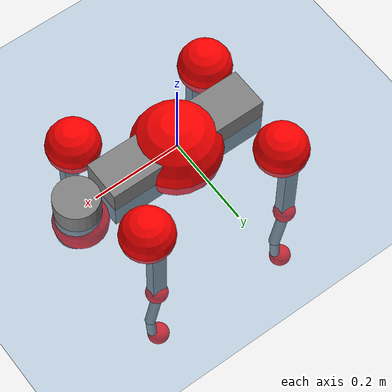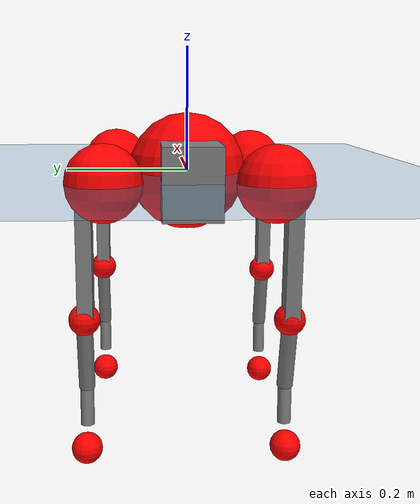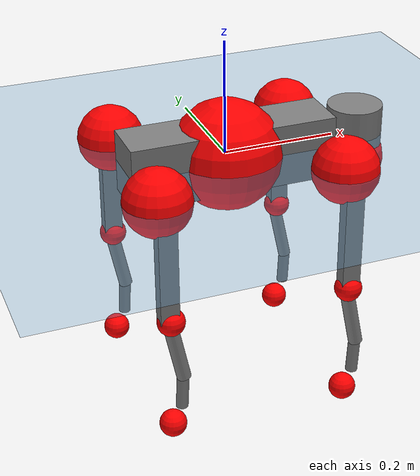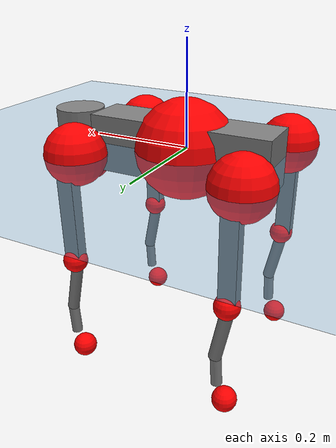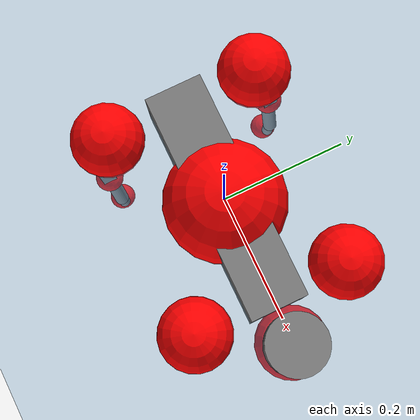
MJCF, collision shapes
<mujoco model="go2">
  <compiler angle="radian" assetdir="assets" balanceinertia="true" inertiafromgeom="false"/>

  <option timestep="0.005" density="1.2" viscosity="2e-05"/>

  <size nkey="1"/>

  <visual>
    <quality shadowsize="8192"/>
    <map shadowclip="0.5"/>
  </visual>

  <default>
    <default class="/">
      <geom contype="0" conaffinity="0" group="1" solref="-1000 -80"/>
      <site size="0.01 0.005 0.005" group="5"/>
      <general forcelimited="true" biastype="affine" gainprm="20" biasprm="0 -20 -0.5"/>
      <default class="go2">
        <joint armature="0.01" damping="0.01" frictionloss="0.2"/>
        <geom condim="1" margin="0.001"/>
        <default class="visual">
          <geom type="mesh" group="2"/>
        </default>
        <default class="collision">
          <geom group="3"/>
          <default class="foot">
            <geom size="0.022 0 0" condim="6" priority="1" friction="0.8 0.02 0.01" solimp="0.015 1 0.022"/>
          </default>
        </default>
        <default class="reward_collision_sphere">
          <geom group="5" rgba="1 0 0 1"/>
        </default>
      </default>
    </default>
  </default>

  <asset>
    <texture type="skybox" colorspace="auto" name="//unnamed_texture_0" builtin="gradient" rgb1="0.95 0.95 0.95" rgb2="0.95 0.95 0.95" width="100" height="600"/>
    <texture type="2d" colorspace="auto" name="texplane" builtin="checker" rgb1="0.345 0.575 0.748" rgb2="0.345 0.575 0.748" markrgb="1 1 1" width="512" height="512"/>
    <material name="MatPlane" class="/" texture="texplane" texuniform="true" texrepeat="2 2" specular="0.9"/>
    <material name="metal" class="/" rgba="0.9 0.95 0.95 1"/>
    <material name="black" class="/" rgba="0 0 0 1"/>
    <material name="white" class="/"/>
    <material name="gray" class="/" rgba="0.671705 0.692426 0.77427 1"/>
    <mesh name="base_0" class="/" file="base_0.obj"/>
    <mesh name="base_1" class="/" file="base_1.obj"/>
    <mesh name="base_2" class="/" file="base_2.obj"/>
    <mesh name="base_3" class="/" file="base_3.obj"/>
    <mesh name="base_4" class="/" file="base_4.obj"/>
    <mesh name="hip_0" class="/" file="hip_0.obj"/>
    <mesh name="hip_1" class="/" file="hip_1.obj"/>
    <mesh name="thigh_0" class="/" file="thigh_0.obj"/>
    <mesh name="thigh_1" class="/" file="thigh_1.obj"/>
    <mesh name="thigh_mirror_0" class="/" file="thigh_mirror_0.obj"/>
    <mesh name="thigh_mirror_1" class="/" file="thigh_mirror_1.obj"/>
    <mesh name="calf_0" class="/" file="calf_0.obj"/>
    <mesh name="calf_1" class="/" file="calf_1.obj"/>
    <mesh name="calf_mirror_0" class="/" file="calf_mirror_0.obj"/>
    <mesh name="calf_mirror_1" class="/" file="calf_mirror_1.obj"/>
    <mesh name="foot" class="/" file="foot.obj"/>
  </asset>

  <worldbody>
    <geom name="floor" class="/" size="100 100 0.125" type="plane" group="0" material="MatPlane"/>
    <light name="toplight_shadow" class="/" pos="0 0 5" dir="0.0990148 0.0990148 -0.990148" type="directional" ambient="0.04 0.04 0.04" diffuse="0.55 0.55 0.55" specular="0.12 0.12 0.12"/>
    <light name="toplight_fill" class="/" pos="0 0 5" dir="0.0990148 0.0990148 -0.990148" type="directional" castshadow="false" ambient="0.04 0.04 0.04" diffuse="0.3 0.3 0.3" specular="0.08 0.08 0.08"/>
    <body name="trunk" childclass="go2" pos="0.00318612 -0.00025245 -0.00240098" quat="1 7.58027e-05 0.000118528 0.000454586">
      <inertial pos="0.0215965 -0.00063856 -0.00498811" quat="0.0013387 0.704966 -0.00205894 0.709236" mass="6.59863" diaginertia="0.0446265 0.147563 0.0228005"/>
      <joint name="//unnamed_joint_0" type="free" armature="0" damping="0" frictionloss="0"/>
      <geom name="//unnamed_geom_1" class="visual" material="black" mesh="base_0"/>
      <geom name="//unnamed_geom_2" class="visual" material="black" mesh="base_1"/>
      <geom name="//unnamed_geom_3" class="visual" material="black" mesh="base_2"/>
      <geom name="//unnamed_geom_4" class="visual" material="white" mesh="base_3"/>
      <geom name="//unnamed_geom_5" class="visual" material="gray" mesh="base_4"/>
      <geom name="trunk_1" class="collision" size="0.182697 0.0454071 0.0553627" type="box"/>
      <geom name="trunk_2" class="collision" size="0.0485638 0.0437074" pos="0.240426 0 0.00989114" type="cylinder"/>
      <geom name="trunk_3" class="collision" size="0.0456499" pos="0.247175 0 -0.0593468"/>
      <geom name="//unnamed_geom_9" class="reward_collision_sphere" size="0.0971275"/>
      <geom name="//unnamed_geom_10" class="reward_collision_sphere" size="0.0582765" pos="0.236208 0 -0.0445101"/>
      <site name="imu" pos="-0.0236928 0.0124539 0.0290084" size="0.00971275"/>
      <camera name="track" pos="0 -2.16222 0" quat="0.707107 0.707107 0 0" mode="trackcom"/>
      <camera name="ego_camera" pos="0.263204 0 0.0445101" quat="-0.5 -0.5 0.5 0.5"/>
      <body name="FL_hip" pos="0.162334 0.0492288 0.00186755" quat="0.999999 -0.00024761 -0.0013372 -0.000773117">
        <inertial pos="-0.000591636 0.000532334 -0.00176522" quat="0.496321 0.500059 0.505135 0.498443" mass="0.59517" diaginertia="0.000360324 0.000889215 0.000452976"/>
        <joint name="FL_hip_joint" pos="0 0 0" axis="0.999961 -0.004956 0.00735984" range="-1.05827 1.0811" armature="0.00951344" damping="0.00743498" frictionloss="0.21642"/>
        <geom name="//unnamed_geom_11" class="visual" material="metal" mesh="hip_0"/>
        <geom name="//unnamed_geom_12" class="visual" material="gray" mesh="hip_1"/>
        <geom name="//unnamed_geom_13" class="collision" size="0.0446787 0.0194255" pos="0 0.0864888 0" quat="0.707107 0.707107 0 0" type="cylinder"/>
        <geom name="//unnamed_geom_14" class="reward_collision_sphere" size="0.0582765" pos="0 0.0756777 0"/>
        <body name="FL_thigh" pos="0.000472501 0.104149 0.00231259" quat="1 1.72936e-05 1.51191e-05 -2.09609e-05">
          <inertial pos="-0.00630826 -0.0228969 -0.034435" quat="0.830648 0.0857178 -0.0184072 0.549852" mass="1.01162" diaginertia="0.00248482 0.00881183 0.00079845"/>
          <joint name="FL_thigh_joint" pos="0 0 0" axis="0.00302522 0.999994 -0.00141195" range="-1.5496 3.48049" armature="0.00947214" damping="0.0220936" frictionloss="0.212407"/>
          <geom name="//unnamed_geom_15" class="visual" material="metal" mesh="thigh_0"/>
          <geom name="//unnamed_geom_16" class="visual" material="gray" mesh="thigh_1"/>
          <geom name="//unnamed_geom_17" class="collision" size="0.103441 0.0118981 0.0165117" pos="0 0 -0.105341" quat="0.707107 0 0.707107 0" type="box"/>
          <body name="FL_calf" pos="0.000666305 0.00112147 -0.211949" quat="1 -0.000206197 0.000286006 -0.000215552">
            <inertial pos="0.00647097 0.00103125 -0.139646" quat="0.704387 -0.00156647 -0.00482961 0.709798" mass="0.227819" diaginertia="0.000614986 0.00220564 4.98315e-05"/>
            <joint name="FL_calf_joint" pos="0 0 0" axis="0.000929149 0.999999 -0.000891752" range="-2.75202 -0.811848" armature="0.00889514" damping="0" frictionloss="0.177709"/>
            <geom name="//unnamed_geom_18" class="visual" material="gray" mesh="calf_0"/>
            <geom name="//unnamed_geom_19" class="visual" material="black" mesh="calf_1"/>
            <geom name="FL_calf0" class="collision" size="0.0116553 0.0582765" pos="0.00674881 0 -0.0593468" quat="0.994493 0 -0.104807 0" type="cylinder"/>
            <geom name="//unnamed_geom_21" class="collision" size="0.010684 0.0315664" pos="0.016872 0 -0.146389" quat="0.999688 0 0.0249974 0" type="cylinder"/>
            <geom name="//unnamed_geom_22" class="visual" pos="0 0 -0.210681" quat="1 0 0 0" material="black" mesh="foot"/>
            <geom name="FL_foot" class="foot" size="0.0240634" pos="-0.0016872 0 -0.210681"/>
            <geom name="//unnamed_geom_24" class="reward_collision_sphere" size="0.0242819"/>
            <geom name="//unnamed_geom_25" class="reward_collision_sphere" size="0.0242819" pos="-0.0016872 0 -0.210681"/>
            <site name="FL_foot" class="foot" pos="-0.0016872 0 -0.210681" size="0.00971275"/>
          </body>
        </body>
      </body>
      <body name="FR_hip" pos="0.162548 -0.0522936 -0.00103032" quat="0.999999 -0.000425504 -0.000917934 -0.000623422">
        <inertial pos="-0.00539531 0.000558928 5.98274e-05" quat="0.498182 0.505619 0.499319 0.496834" mass="0.584397" diaginertia="0.000370206 0.000857219 0.000451188"/>
        <joint name="FR_hip_joint" pos="0 0 0" axis="0.99999 -0.00245916 -0.00377103" stiffness="0.0145359" range="-1.02132 1.04108" armature="0.0114057" damping="0.00107348" frictionloss="0.161613"/>
        <geom name="//unnamed_geom_26" class="visual" pos="0 8.01438e-10 3.43753e-08" quat="4.63268e-05 1 0 0" material="metal" mesh="hip_0"/>
        <geom name="//unnamed_geom_27" class="visual" pos="0 1.29923e-09 -8.50234e-08" quat="4.63268e-05 1 0 0" material="gray" mesh="hip_1"/>
        <geom name="//unnamed_geom_28" class="collision" size="0.0446787 0.0194255" pos="0 -0.0864888 0" quat="0.707107 0.707107 0 0" type="cylinder"/>
        <geom name="//unnamed_geom_29" class="reward_collision_sphere" size="0.0582765" pos="0 -0.0756777 0"/>
        <body name="FR_thigh" pos="5.37934e-05 -0.105822 -0.00227613" quat="0.999999 -0.00099511 0.000245164 0.000783824">
          <inertial pos="-0.00313745 0.0279545 -0.0348765" quat="0.554827 -0.0160137 0.0781135 0.828136" mass="1.0754" diaginertia="0.00243614 0.00812835 0.000814786"/>
          <joint name="FR_thigh_joint" pos="0 0 0" axis="-0.00562918 -0.999892 0.013547" range="-3.54293 1.51965" armature="0.00970137" damping="0" frictionloss="0.216287"/>
          <geom name="//unnamed_geom_30" class="visual" material="metal" mesh="thigh_mirror_0"/>
          <geom name="//unnamed_geom_31" class="visual" material="gray" mesh="thigh_mirror_1"/>
          <geom name="//unnamed_geom_32" class="collision" size="0.103441 0.0118981 0.0165117" pos="0 0 -0.105341" quat="0.707107 0 0.707107 0" type="box"/>
          <body name="FR_calf" pos="0.000750015 0.000343881 -0.21177" quat="1 0.000256456 3.28359e-05 -0.000222151">
            <inertial pos="0.00695783 0.000666021 -0.142629" quat="0.69935 0.00179213 0.00264958 0.714772" mass="0.225036" diaginertia="0.00061606 0.00213062 4.96142e-05"/>
            <joint name="FR_calf_joint" pos="0 0 0" axis="0.00119552 -0.999954 0.00954447" range="0.832184 2.70659" armature="0.00993009" damping="0.015187" frictionloss="0.218618"/>
            <geom name="//unnamed_geom_33" class="visual" material="gray" mesh="calf_mirror_0"/>
            <geom name="//unnamed_geom_34" class="visual" material="black" mesh="calf_mirror_1"/>
            <geom name="FR_calf0" class="collision" size="0.0126266 0.0582765" pos="0.00843602 0 -0.0593468" quat="0.995004 0 -0.0998334 0" type="cylinder"/>
            <geom name="//unnamed_geom_36" class="collision" size="0.010684 0.0315664" pos="0.016872 0 -0.146389" quat="0.999688 0 0.0249974 0" type="cylinder"/>
            <geom name="//unnamed_geom_37" class="visual" pos="0 0 -0.210681" quat="1 0 0 0" material="black" mesh="foot"/>
            <geom name="FR_foot" class="foot" size="0.0229322" pos="-0.0016872 0 -0.210681"/>
            <geom name="//unnamed_geom_39" class="reward_collision_sphere" size="0.0242819"/>
            <geom name="//unnamed_geom_40" class="reward_collision_sphere" size="0.0242819" pos="-0.0016872 0 -0.210681"/>
            <site name="FR_foot" class="foot" pos="-0.0016872 0 -0.210681" size="0.00971275"/>
          </body>
        </body>
      </body>
      <body name="RL_hip" pos="-0.16651 0.0541426 0.00151099" quat="0.999997 0.000342354 0.0023432 0.000460702">
        <inertial pos="0.00164166 0.000685152 0.00152246" quat="0.505188 0.499112 0.496308 0.49935" mass="0.641061" diaginertia="0.000377386 0.000880565 0.000440623"/>
        <joint name="RL_hip_joint" pos="0 0 0" axis="-0.999812 -0.0172 0.00892104" stiffness="0.00060687" range="-1.09412 1.07268" armature="0.00975811" damping="0.010183" frictionloss="0.217754"/>
        <geom name="//unnamed_geom_41" class="visual" pos="1.26764e-09 0 2.48486e-07" quat="4.63268e-05 0 1 0" material="metal" mesh="hip_0"/>
        <geom name="//unnamed_geom_42" class="visual" pos="2.05499e-09 0 2.20372e-07" quat="4.63268e-05 0 1 0" material="gray" mesh="hip_1"/>
        <geom name="//unnamed_geom_43" class="collision" size="0.0446787 0.0194255" pos="0 0.0864888 0" quat="0.707107 0.707107 0 0" type="cylinder"/>
        <geom name="//unnamed_geom_44" class="reward_collision_sphere" size="0.0582765" pos="0 0.0756777 0"/>
        <body name="RL_thigh" pos="0.00296406 0.105742 1.71888e-05" quat="0.999999 0.00101068 0.000693181 -0.000813863">
          <inertial pos="-0.00226715 -0.0258671 -0.0345073" quat="0.834371 0.0838261 -0.0177547 0.544503" mass="1.07583" diaginertia="0.00263194 0.00872132 0.000861151"/>
          <joint name="RL_thigh_joint" pos="0 0 0" axis="0.00230943 0.999996 -0.0018581" stiffness="0.00711143" range="-0.554627 4.53098" armature="0.00946569" damping="0.0234368" frictionloss="0.169851"/>
          <geom name="//unnamed_geom_45" class="visual" material="metal" mesh="thigh_0"/>
          <geom name="//unnamed_geom_46" class="visual" material="gray" mesh="thigh_1"/>
          <geom name="//unnamed_geom_47" class="collision" size="0.103441 0.0118981 0.0165117" pos="0 0 -0.105341" quat="0.707107 0 0.707107 0" type="box"/>
          <body name="RL_calf" pos="0.00168249 0.00245087 -0.208088" quat="1 0.000342747 0.000158974 8.2532e-05">
            <inertial pos="0.00533738 -0.000755018 -0.13857" quat="0.710534 0.00147778 -0.00449572 0.703647" mass="0.220723" diaginertia="0.00063549 0.00213266 4.95888e-05"/>
            <joint name="RL_calf_joint" pos="0 0 0" axis="0.00392951 0.999992 0.000564944" stiffness="0.000489074" range="-2.77567 -0.838495" armature="0.00880381" damping="0.0216116" frictionloss="0.199219"/>
            <geom name="//unnamed_geom_48" class="visual" material="gray" mesh="calf_0"/>
            <geom name="//unnamed_geom_49" class="visual" material="black" mesh="calf_1"/>
            <geom name="RL_calf0" class="collision" size="0.0126266 0.0582765" pos="0.00843602 0 -0.0593468" quat="0.995004 0 -0.0998334 0" type="cylinder"/>
            <geom name="//unnamed_geom_51" class="collision" size="0.010684 0.0315664" pos="0.016872 0 -0.146389" quat="0.999688 0 0.0249974 0" type="cylinder"/>
            <geom name="//unnamed_geom_52" class="visual" pos="0 0 -0.210681" quat="1 0 0 0" material="black" mesh="foot"/>
            <geom name="RL_foot" class="foot" size="0.0209009" pos="-0.0016872 0 -0.210681"/>
            <geom name="//unnamed_geom_54" class="reward_collision_sphere" size="0.0242819"/>
            <geom name="//unnamed_geom_55" class="reward_collision_sphere" size="0.0242819" pos="-0.0016872 0 -0.210681"/>
            <site name="RL_foot" class="foot" pos="-0.0016872 0 -0.210681" size="0.00971275"/>
          </body>
        </body>
      </body>
      <body name="RR_hip" pos="-0.164842 -0.0466614 -0.00011142" quat="1 0.000135121 -6.2462e-05 0.000215602">
        <inertial pos="0.00432777 -0.00295141 0.000234926" quat="0.504431 0.498896 0.500867 0.495767" mass="0.628878" diaginertia="0.000387031 0.000897324 0.000444629"/>
        <joint name="RR_hip_joint" pos="0 0 0" axis="-0.999931 0.0057471 -0.0102641" range="-1.00378 1.05001" armature="0.00812493" damping="0" frictionloss="0.210806"/>
        <geom name="//unnamed_geom_56" class="visual" pos="-1.25942e-09 8.01438e-10 2.14111e-07" quat="2.14617e-09 4.63268e-05 4.63268e-05 -1" material="metal" mesh="hip_0"/>
        <geom name="//unnamed_geom_57" class="visual" pos="-2.07533e-09 1.29923e-09 3.05395e-07" quat="2.14617e-09 4.63268e-05 4.63268e-05 -1" material="gray" mesh="hip_1"/>
        <geom name="//unnamed_geom_58" class="collision" size="0.0446787 0.0194255" pos="0 -0.0864888 0" quat="0.707107 0.707107 0 0" type="cylinder"/>
        <geom name="//unnamed_geom_59" class="reward_collision_sphere" size="0.0582765" pos="0 -0.0756777 0"/>
        <body name="RR_thigh" pos="0.00203694 -0.10519 0.00174258" quat="1 5.46587e-05 -0.000434542 0.000517663">
          <inertial pos="-0.00297724 0.0223466 -0.0323312" quat="0.549296 -0.0176356 0.0846156 0.831146" mass="0.99809" diaginertia="0.00239301 0.00844834 0.000829356"/>
          <joint name="RR_thigh_joint" pos="0 0 0" axis="-0.00030925 -0.999758 -0.0219792" range="-4.49122 0.545041" armature="0.0103945" damping="0.000921515" frictionloss="0.16922"/>
          <geom name="//unnamed_geom_60" class="visual" material="metal" mesh="thigh_mirror_0"/>
          <geom name="//unnamed_geom_61" class="visual" material="gray" mesh="thigh_mirror_1"/>
          <geom name="//unnamed_geom_62" class="collision" size="0.103441 0.0118981 0.0165117" pos="0 0 -0.105341" quat="0.707107 0 0.707107 0" type="box"/>
          <body name="RR_calf" pos="0.0047576 0.000418623 -0.212766" quat="1 0.000747706 0.000128903 0.000513111">
            <inertial pos="0.000904114 0.0015878 -0.138416" quat="0.70594 0.00626576 0.00559217 0.708222" mass="0.219343" diaginertia="0.000677158 0.00225655 5.28905e-05"/>
            <joint name="RR_calf_joint" pos="0 0 0" axis="0.00120522 -0.99994 -0.0108865" range="0.837822 2.63045" armature="0.0100165" damping="0.0202809" frictionloss="0.218926"/>
            <geom name="//unnamed_geom_63" class="visual" material="gray" mesh="calf_mirror_0"/>
            <geom name="//unnamed_geom_64" class="visual" material="black" mesh="calf_mirror_1"/>
            <geom name="RR_calf0" class="collision" size="0.0126266 0.0582765" pos="0.00843602 0 -0.0593468" quat="0.995004 0 -0.0998334 0" type="cylinder"/>
            <geom name="//unnamed_geom_66" class="collision" size="0.010684 0.0315664" pos="0.016872 0 -0.146389" quat="0.999688 0 0.0249974 0" type="cylinder"/>
            <geom name="//unnamed_geom_67" class="visual" pos="0 0 -0.210681" quat="1 0 0 0" material="black" mesh="foot"/>
            <geom name="RR_foot" class="foot" size="0.0192055" pos="-0.0016872 0 -0.210681"/>
            <geom name="//unnamed_geom_69" class="reward_collision_sphere" size="0.0242819"/>
            <geom name="//unnamed_geom_70" class="reward_collision_sphere" size="0.0242819" pos="-0.0016872 0 -0.210681"/>
            <site name="RR_foot" class="foot" pos="-0.0016872 0 -0.210681" size="0.00971275"/>
          </body>
        </body>
      </body>
    </body>
  </worldbody>

  <contact>
    <pair class="/" geom1="floor" geom2="FL_foot" name="//unnamed_contact_0"/>
    <pair class="/" geom1="floor" geom2="FR_foot" name="//unnamed_contact_1"/>
    <pair class="/" geom1="floor" geom2="RL_foot" name="//unnamed_contact_2"/>
    <pair class="/" geom1="floor" geom2="RR_foot" name="//unnamed_contact_3"/>
  </contact>

  <actuator>
    <general name="FL_hip" class="/" joint="FL_hip_joint" forcerange="-22.4669 22.4669" gainprm="19.4393" biasprm="0 -19.4393 -0.490295"/>
    <general name="FL_thigh" class="/" joint="FL_thigh_joint" forcerange="-21.5768 21.5768" gainprm="19.4393" biasprm="0 -19.4393 -0.490295"/>
    <general name="FL_calf" class="/" joint="FL_calf_joint" forcerange="-44.2527 44.2527" gainprm="19.4393" biasprm="0 -19.4393 -0.490295"/>
    <general name="FR_hip" class="/" joint="FR_hip_joint" forcerange="-19.4424 19.4424" gainprm="19.4393" biasprm="0 -19.4393 -0.490295"/>
    <general name="FR_thigh" class="/" joint="FR_thigh_joint" forcerange="-22.7348 22.7348" gainprm="19.4393" biasprm="0 -19.4393 -0.490295"/>
    <general name="FR_calf" class="/" joint="FR_calf_joint" forcerange="-44.4143 44.4143" gainprm="19.4393" biasprm="0 -19.4393 -0.490295"/>
    <general name="RL_hip" class="/" joint="RL_hip_joint" forcerange="-21.9419 21.9419" gainprm="19.4393" biasprm="0 -19.4393 -0.490295"/>
    <general name="RL_thigh" class="/" joint="RL_thigh_joint" forcerange="-22.1269 22.1269" gainprm="19.4393" biasprm="0 -19.4393 -0.490295"/>
    <general name="RL_calf" class="/" joint="RL_calf_joint" forcerange="-46.4961 46.4961" gainprm="19.4393" biasprm="0 -19.4393 -0.490295"/>
    <general name="RR_hip" class="/" joint="RR_hip_joint" forcerange="-24.4341 24.4341" gainprm="19.4393" biasprm="0 -19.4393 -0.490295"/>
    <general name="RR_thigh" class="/" joint="RR_thigh_joint" forcerange="-20.8033 20.8033" gainprm="19.4393" biasprm="0 -19.4393 -0.490295"/>
    <general name="RR_calf" class="/" joint="RR_calf_joint" forcerange="-40.1259 40.1259" gainprm="19.4393" biasprm="0 -19.4393 -0.490295"/>
  </actuator>

  <sensor>
    <gyro site="imu" name="imu_angular_velocity"/>
    <velocimeter site="imu" name="imu_linear_velocity"/>
    <framelinvel objtype="site" objname="FL_foot" name="FL_foot_global_linear_velocity"/>
    <framelinvel objtype="site" objname="FR_foot" name="FR_foot_global_linear_velocity"/>
    <framelinvel objtype="site" objname="RL_foot" name="RL_foot_global_linear_velocity"/>
    <framelinvel objtype="site" objname="RR_foot" name="RR_foot_global_linear_velocity"/>
  </sensor>

  <keyframe>
    <key name="home" qpos="0 0 0.325 1 0 0 0 0.1 0.8 -1.5 -0.1 -0.8 1.5 -0.1 0.8 -1.5 0.1 -0.8 1.5"/>
  </keyframe>
</mujoco>
